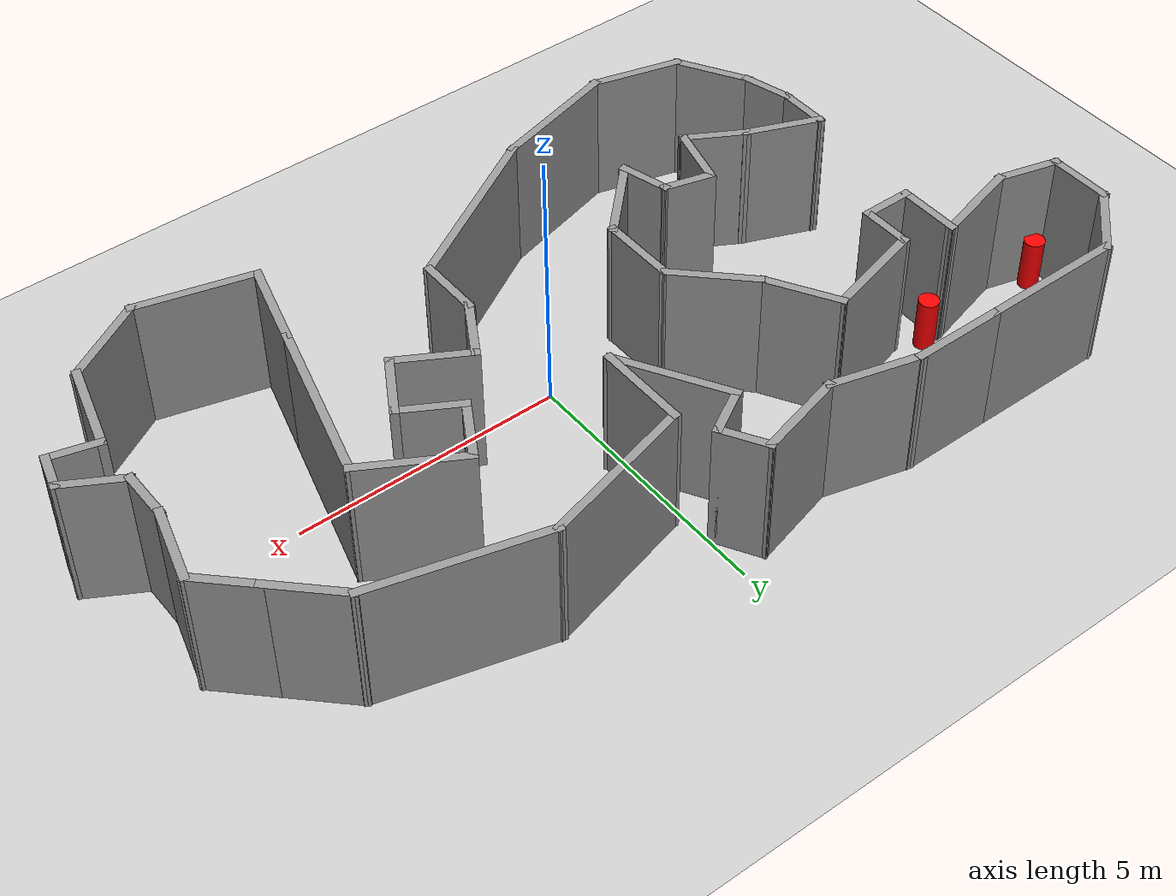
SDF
<sdf version="1.6">
 <world name="default">
  <light name="sun" type="directional">
   <pose>0 0 10 0 -0 0</pose>
   <diffuse>0.8 0.8 0.8 1</diffuse>
   <specular>0.2 0.2 0.2 1</specular>
   <attenuation>
    <range>1000</range>
    <constant>0.9</constant>
    <linear>0.01</linear>
    <quadratic>0.001</quadratic>
   </attenuation>
   <direction>-0.5 0.1 -0.9</direction>
  </light>
  <model name="ground_plane">
   <static>1</static>
   <link name="link">
    <collision name="collision">
     <geometry><plane><normal>0 0 1</normal><size>100 100</size></plane></geometry>
     <surface>
      <contact><collide_bitmask>65535</collide_bitmask></contact>
      <friction><ode><mu>100</mu><mu2>50</mu2></ode></friction>
     </surface>
    </collision>
    <visual name="visual">
     <cast_shadows>0</cast_shadows>
     <geometry><plane><normal>0 0 1</normal><size>100 100</size></plane></geometry>
     <material>
      <script><uri>file://media/materials/scripts/gazebo.material</uri><name>Gazebo/Grey</name></script>
     </material>
    </visual>
   </link>
  </model>
  <gravity>0 0 -9.8</gravity>
  <magnetic_field>6e-06 2.3e-05 -4.2e-05</magnetic_field>
  <atmosphere type="adiabatic"/>
  <physics name="default_physics" default="0" type="ode">
   <max_step_size>0.001</max_step_size>
   <real_time_factor>1</real_time_factor>
   <real_time_update_rate>1000</real_time_update_rate>
  </physics>
  <scene><ambient>0.4 0.4 0.4 1</ambient><background>0.7 0.7 0.7 1</background><shadows>0</shadows></scene>
  <audio><device>default</device></audio>
  <spherical_coordinates>
   <surface_model>EARTH_WGS84</surface_model>
   <latitude_deg>0</latitude_deg>
   <longitude_deg>0</longitude_deg>
   <elevation>0</elevation>
   <heading_deg>0</heading_deg>
  </spherical_coordinates>
  <model name="uwb_anchor0">
   <link name="link">
    <inertial>
     <mass>1</mass>
     <inertia><ixx>0.145833</ixx><ixy>0</ixy><ixz>0</ixz><iyy>0.145833</iyy><iyz>0</iyz><izz>0.125</izz></inertia>
    </inertial>
    <visual name="visual">
     <geometry><cylinder><radius>0.18609</radius><length>1</length></cylinder></geometry>
     <material>
      <script><name>Gazebo/Grey</name><uri>file://media/materials/scripts/gazebo.material</uri></script>
      <ambient>0 0 0 1</ambient>
      <shader type="vertex"><normal_map>__default__</normal_map></shader>
      <diffuse>1 0 0 1</diffuse>
      <specular>0.01 0.01 0.01 1</specular>
      <emissive>0 0 0 1</emissive>
     </material>
    </visual>
    <collision name="collision">
     <geometry><cylinder><radius>0.18609</radius><length>1</length></cylinder></geometry>
     <surface>
      <friction>
       <ode><mu>1</mu><mu2>1</mu2><fdir1>0 0 0</fdir1><slip1>0</slip1><slip2>0</slip2></ode>
       <torsional>
        <coefficient>1</coefficient>
        <patch_radius>0</patch_radius>
        <surface_radius>0</surface_radius>
        <use_patch_radius>1</use_patch_radius>
        <ode><slip>0</slip></ode>
       </torsional>
      </friction>
      <bounce><restitution_coefficient>0</restitution_coefficient><threshold>1e+06</threshold></bounce>
      <contact>
       <collide_without_contact>0</collide_without_contact>
       <collide_without_contact_bitmask>1</collide_without_contact_bitmask>
       <collide_bitmask>1</collide_bitmask>
       <ode>
        <soft_cfm>0</soft_cfm>
        <soft_erp>0.2</soft_erp>
        <kp>1e+13</kp>
        <kd>1</kd>
        <max_vel>0.01</max_vel>
        <min_depth>0</min_depth>
       </ode>
       <bullet>
        <split_impulse>1</split_impulse>
        <split_impulse_penetration_threshold>-0.01</split_impulse_penetration_threshold>
        <soft_cfm>0</soft_cfm>
        <soft_erp>0.2</soft_erp>
        <kp>1e+13</kp>
        <kd>1</kd>
       </bullet>
      </contact>
     </surface>
    </collision>
   </link>
   <static>1</static>
   <pose>-1.10123 4.11085 0.5 0 -0 0</pose>
  </model>
  <model name="Untitled">
   <pose>-0.232609 0.530224 0 0 -0 0</pose>
   <link name="Wall_0">
    <collision name="Wall_0_Collision">
     <geometry><box><size>1 0.15 2.5</size></box></geometry>
     <pose>0 0 1.25 0 -0 0</pose>
    </collision>
    <visual name="Wall_0_Visual">
     <pose>0 0 1.25 0 -0 0</pose>
     <geometry><box><size>1 0.15 2.5</size></box></geometry>
     <material>
      <script><uri>file://media/materials/scripts/gazebo.material</uri><name>Gazebo/Grey</name></script>
      <ambient>1 1 1 1</ambient>
     </material>
     <meta><layer>0</layer></meta>
    </visual>
    <pose>-6.13284 -1.52466 0 0 -0 -1.5708</pose>
   </link>
   <link name="Wall_1">
    <collision name="Wall_1_Collision">
     <geometry><box><size>1 0.15 2.5</size></box></geometry>
     <pose>0 0 1.25 0 -0 0</pose>
    </collision>
    <visual name="Wall_1_Visual">
     <pose>0 0 1.25 0 -0 0</pose>
     <geometry><box><size>1 0.15 2.5</size></box></geometry>
     <material>
      <script><uri>file://media/materials/scripts/gazebo.material</uri><name>Gazebo/Grey</name></script>
      <ambient>1 1 1 1</ambient>
     </material>
     <meta><layer>0</layer></meta>
    </visual>
    <pose>-6.02285 -2.36018 0 0 -0 -1.309</pose>
   </link>
   <link name="Wall_10">
    <collision name="Wall_10_Collision">
     <geometry><box><size>1.5 0.15 2.5</size></box></geometry>
     <pose>0 0 1.25 0 -0 0</pose>
    </collision>
    <visual name="Wall_10_Visual">
     <pose>0 0 1.25 0 -0 0</pose>
     <geometry><box><size>1.5 0.15 2.5</size></box></geometry>
     <material>
      <script><uri>file://media/materials/scripts/gazebo.material</uri><name>Gazebo/Grey</name></script>
      <ambient>1 1 1 1</ambient>
     </material>
     <meta><layer>0</layer></meta>
    </visual>
    <pose>2.61331 -0.355587 0 0 -0 -0.523599</pose>
   </link>
   <link name="Wall_11">
    <collision name="Wall_11_Collision">
     <geometry><box><size>1.25 0.15 2.5</size></box></geometry>
     <pose>0 0 1.25 0 -0 0</pose>
    </collision>
    <visual name="Wall_11_Visual">
     <pose>0 0 1.25 0 -0 0</pose>
     <geometry><box><size>1.25 0.15 2.5</size></box></geometry>
     <material>
      <script><uri>file://media/materials/scripts/gazebo.material</uri><name>Gazebo/Grey</name></script>
      <ambient>1 1 1 1</ambient>
     </material>
     <meta><layer>0</layer></meta>
    </visual>
    <pose>3.47288 -0.216773 0 0 -0 1.0472</pose>
   </link>
   <link name="Wall_12">
    <collision name="Wall_12_Collision">
     <geometry><box><size>1.25 0.15 2.5</size></box></geometry>
     <pose>0 0 1.25 0 -0 0</pose>
    </collision>
    <visual name="Wall_12_Visual">
     <pose>0 0 1.25 0 -0 0</pose>
     <geometry><box><size>1.25 0.15 2.5</size></box></geometry>
     <material>
      <script><uri>file://media/materials/scripts/gazebo.material</uri><name>Gazebo/Grey</name></script>
      <ambient>1 1 1 1</ambient>
     </material>
     <meta><layer>0</layer></meta>
    </visual>
    <pose>3.27156 0.534541 0 0 -0 2.61799</pose>
   </link>
   <link name="Wall_13">
    <collision name="Wall_13_Collision">
     <geometry><box><size>1.25 0.15 2.5</size></box></geometry>
     <pose>0 0 1.25 0 -0 0</pose>
    </collision>
    <visual name="Wall_13_Visual">
     <pose>0 0 1.25 0 -0 0</pose>
     <geometry><box><size>1.25 0.15 2.5</size></box></geometry>
     <material>
      <script><uri>file://media/materials/scripts/gazebo.material</uri><name>Gazebo/Grey</name></script>
      <ambient>1 1 1 1</ambient>
     </material>
     <meta><layer>0</layer></meta>
    </visual>
    <pose>3.07025 1.28585 0 0 -0 1.0472</pose>
   </link>
   <link name="Wall_14">
    <collision name="Wall_14_Collision">
     <geometry><box><size>2 0.15 2.5</size></box></geometry>
     <pose>0 0 1.25 0 -0 0</pose>
    </collision>
    <visual name="Wall_14_Visual">
     <pose>0 0 1.25 0 -0 0</pose>
     <geometry><box><size>2 0.15 2.5</size></box></geometry>
     <material>
      <script><uri>file://media/materials/scripts/gazebo.material</uri><name>Gazebo/Grey</name></script>
      <ambient>1 1 1 1</ambient>
     </material>
     <meta><layer>0</layer></meta>
    </visual>
    <pose>4.14632 1.29967 0 0 -0 -0.523599</pose>
   </link>
   <link name="Wall_15">
    <collision name="Wall_15_Collision">
     <geometry><box><size>3.25 0.15 2.5</size></box></geometry>
     <pose>0 0 1.25 0 -0 0</pose>
    </collision>
    <visual name="Wall_15_Visual">
     <pose>0 0 1.25 0 -0 0</pose>
     <geometry><box><size>3.25 0.15 2.5</size></box></geometry>
     <material>
      <script><uri>file://media/materials/scripts/gazebo.material</uri><name>Gazebo/Grey</name></script>
      <ambient>1 1 1 1</ambient>
     </material>
     <meta><layer>0</layer></meta>
    </visual>
    <pose>4.54623 -0.660016 0 0 -0 -1.8326</pose>
   </link>
   <link name="Wall_16">
    <collision name="Wall_16_Collision">
     <geometry><box><size>1.75 0.15 2.5</size></box></geometry>
     <pose>0 0 1.25 0 -0 0</pose>
    </collision>
    <visual name="Wall_16_Visual">
     <pose>0 0 1.25 0 -0 0</pose>
     <geometry><box><size>1.75 0.15 2.5</size></box></geometry>
     <material>
      <script><uri>file://media/materials/scripts/gazebo.material</uri><name>Gazebo/Grey</name></script>
      <ambient>1 1 1 1</ambient>
     </material>
     <meta><layer>0</layer></meta>
    </visual>
    <pose>3.938 -2.92994 0 0 -0 -1.8326</pose>
   </link>
   <link name="Wall_17">
    <collision name="Wall_17_Collision">
     <geometry><box><size>2.25 0.15 2.5</size></box></geometry>
     <pose>0 0 1.25 0 -0 0</pose>
    </collision>
    <visual name="Wall_17_Visual">
     <pose>0 0 1.25 0 -0 0</pose>
     <geometry><box><size>2.25 0.15 2.5</size></box></geometry>
     <material>
      <script><uri>file://media/materials/scripts/gazebo.material</uri><name>Gazebo/Grey</name></script>
      <ambient>1 1 1 1</ambient>
     </material>
     <meta><layer>0</layer></meta>
    </visual>
    <pose>4.74517 -3.97444 0 0 -0 -0.261799</pose>
   </link>
   <link name="Wall_18">
    <collision name="Wall_18_Collision">
     <geometry><box><size>1.75 0.15 2.5</size></box></geometry>
     <pose>0 0 1.25 0 -0 0</pose>
    </collision>
    <visual name="Wall_18_Visual">
     <pose>0 0 1.25 0 -0 0</pose>
     <geometry><box><size>1.75 0.15 2.5</size></box></geometry>
     <material>
      <script><uri>file://media/materials/scripts/gazebo.material</uri><name>Gazebo/Grey</name></script>
      <ambient>1 1 1 1</ambient>
     </material>
     <meta><layer>0</layer></meta>
    </visual>
    <pose>6.45221 -3.8462 0 0 -0 0.523599</pose>
   </link>
   <link name="Wall_19">
    <collision name="Wall_19_Collision">
     <geometry><box><size>1.75 0.15 2.5</size></box></geometry>
     <pose>0 0 1.25 0 -0 0</pose>
    </collision>
    <visual name="Wall_19_Visual">
     <pose>0 0 1.25 0 -0 0</pose>
     <geometry><box><size>1.75 0.15 2.5</size></box></geometry>
     <material>
      <script><uri>file://media/materials/scripts/gazebo.material</uri><name>Gazebo/Grey</name></script>
      <ambient>1 1 1 1</ambient>
     </material>
     <meta><layer>0</layer></meta>
    </visual>
    <pose>7.35209 -2.67346 0 0 -0 1.309</pose>
   </link>
   <link name="Wall_20">
    <collision name="Wall_20_Collision">
     <geometry><box><size>1 0.15 2.5</size></box></geometry>
     <pose>0 0 1.25 0 -0 0</pose>
    </collision>
    <visual name="Wall_20_Visual">
     <pose>0 0 1.25 0 -0 0</pose>
     <geometry><box><size>1 0.15 2.5</size></box></geometry>
     <material>
      <script><uri>file://media/materials/scripts/gazebo.material</uri><name>Gazebo/Grey</name></script>
      <ambient>1 1 1 1</ambient>
     </material>
     <meta><layer>0</layer></meta>
    </visual>
    <pose>7.96966 -2.01072 0 0 -0 -0.261799</pose>
   </link>
   <link name="Wall_21">
    <collision name="Wall_21_Collision">
     <geometry><box><size>0.75 0.15 2.5</size></box></geometry>
     <pose>0 0 1.25 0 -0 0</pose>
    </collision>
    <visual name="Wall_21_Visual">
     <pose>0 0 1.25 0 -0 0</pose>
     <geometry><box><size>0.75 0.15 2.5</size></box></geometry>
     <material>
      <script><uri>file://media/materials/scripts/gazebo.material</uri><name>Gazebo/Grey</name></script>
      <ambient>1 1 1 1</ambient>
     </material>
     <meta><layer>0</layer></meta>
    </visual>
    <pose>8.45782 -1.83094 0 0 -0 1.309</pose>
   </link>
   <link name="Wall_22">
    <collision name="Wall_22_Collision">
     <geometry><box><size>1.25 0.15 2.5</size></box></geometry>
     <pose>0 0 1.25 0 -0 0</pose>
    </collision>
    <visual name="Wall_22_Visual">
     <pose>0 0 1.25 0 -0 0</pose>
     <geometry><box><size>1.25 0.15 2.5</size></box></geometry>
     <material>
      <script><uri>file://media/materials/scripts/gazebo.material</uri><name>Gazebo/Grey</name></script>
      <ambient>1 1 1 1</ambient>
     </material>
     <meta><layer>0</layer></meta>
    </visual>
    <pose>8.05916 -1.26616 0 0 -0 2.61799</pose>
   </link>
   <link name="Wall_23">
    <collision name="Wall_23_Collision">
     <geometry><box><size>1 0.15 2.5</size></box></geometry>
     <pose>0 0 1.25 0 -0 0</pose>
    </collision>
    <visual name="Wall_23_Visual">
     <pose>0 0 1.25 0 -0 0</pose>
     <geometry><box><size>1 0.15 2.5</size></box></geometry>
     <material>
      <script><uri>file://media/materials/scripts/gazebo.material</uri><name>Gazebo/Grey</name></script>
      <ambient>1 1 1 1</ambient>
     </material>
     <meta><layer>0</layer></meta>
    </visual>
    <pose>7.58284 -0.566162 0 0 -0 1.5708</pose>
   </link>
   <link name="Wall_24">
    <collision name="Wall_24_Collision">
     <geometry><box><size>1.5 0.15 2.5</size></box></geometry>
     <pose>0 0 1.25 0 -0 0</pose>
    </collision>
    <visual name="Wall_24_Visual">
     <pose>0 0 1.25 0 -0 0</pose>
     <geometry><box><size>1.5 0.15 2.5</size></box></geometry>
     <material>
      <script><uri>file://media/materials/scripts/gazebo.material</uri><name>Gazebo/Grey</name></script>
      <ambient>1 1 1 1</ambient>
     </material>
     <meta><layer>0</layer></meta>
    </visual>
    <pose>7.75755 0.510838 0 0 -0 1.309</pose>
   </link>
   <link name="Wall_25">
    <collision name="Wall_25_Collision">
     <geometry><box><size>1.25 0.15 2.5</size></box></geometry>
     <pose>0 0 1.25 0 -0 0</pose>
    </collision>
    <visual name="Wall_25_Visual">
     <pose>0 0 1.25 0 -0 0</pose>
     <geometry><box><size>1.25 0.15 2.5</size></box></geometry>
     <material>
      <script><uri>file://media/materials/scripts/gazebo.material</uri><name>Gazebo/Grey</name></script>
      <ambient>1 1 1 1</ambient>
     </material>
     <meta><layer>0</layer></meta>
    </visual>
    <pose>7.54334 1.55175 0 0 -0 2.35619</pose>
   </link>
   <link name="Wall_26">
    <collision name="Wall_26_Collision">
     <geometry><box><size>1.5 0.15 2.5</size></box></geometry>
     <pose>0 0 1.25 0 -0 0</pose>
    </collision>
    <visual name="Wall_26_Visual">
     <pose>0 0 1.25 0 -0 0</pose>
     <geometry><box><size>1.5 0.15 2.5</size></box></geometry>
     <material>
      <script><uri>file://media/materials/scripts/gazebo.material</uri><name>Gazebo/Grey</name></script>
      <ambient>1 1 1 1</ambient>
     </material>
     <meta><layer>0</layer></meta>
    </visual>
    <pose>6.67713 2.41795 0 0 -0 2.35619</pose>
   </link>
   <link name="Wall_27">
    <collision name="Wall_27_Collision">
     <geometry><box><size>3.25 0.15 2.5</size></box></geometry>
     <pose>0 0 1.25 0 -0 0</pose>
    </collision>
    <visual name="Wall_27_Visual">
     <pose>0 0 1.25 0 -0 0</pose>
     <geometry><box><size>3.25 0.15 2.5</size></box></geometry>
     <material>
      <script><uri>file://media/materials/scripts/gazebo.material</uri><name>Gazebo/Grey</name></script>
      <ambient>1 1 1 1</ambient>
     </material>
     <meta><layer>0</layer></meta>
    </visual>
    <pose>4.70265 3.29642 0 0 -0 2.87979</pose>
   </link>
   <link name="Wall_28">
    <collision name="Wall_28_Collision">
     <geometry><box><size>3 0.15 2.5</size></box></geometry>
     <pose>0 0 1.25 0 -0 0</pose>
    </collision>
    <visual name="Wall_28_Visual">
     <pose>0 0 1.25 0 -0 0</pose>
     <geometry><box><size>3 0.15 2.5</size></box></geometry>
     <material>
      <script><uri>file://media/materials/scripts/gazebo.material</uri><name>Gazebo/Grey</name></script>
      <ambient>1 1 1 1</ambient>
     </material>
     <meta><layer>0</layer></meta>
    </visual>
    <pose>1.82902 3.32877 0 0 -0 -2.87979</pose>
   </link>
   <link name="Wall_29">
    <collision name="Wall_29_Collision">
     <geometry><box><size>1.75 0.15 2.5</size></box></geometry>
     <pose>0 0 1.25 0 -0 0</pose>
    </collision>
    <visual name="Wall_29_Visual">
     <pose>0 0 1.25 0 -0 0</pose>
     <geometry><box><size>1.75 0.15 2.5</size></box></geometry>
     <material>
      <script><uri>file://media/materials/scripts/gazebo.material</uri><name>Gazebo/Grey</name></script>
      <ambient>1 1 1 1</ambient>
     </material>
     <meta><layer>0</layer></meta>
    </visual>
    <pose>0.452579 2.15996 0 0 -0 -1.5708</pose>
   </link>
   <link name="Wall_30">
    <collision name="Wall_30_Collision">
     <geometry><box><size>2.25 0.15 2.5</size></box></geometry>
     <pose>0 0 1.25 0 -0 0</pose>
    </collision>
    <visual name="Wall_30_Visual">
     <pose>0 0 1.25 0 -0 0</pose>
     <geometry><box><size>2.25 0.15 2.5</size></box></geometry>
     <material>
      <script><uri>file://media/materials/scripts/gazebo.material</uri><name>Gazebo/Grey</name></script>
      <ambient>1 1 1 1</ambient>
     </material>
     <meta><layer>0</layer></meta>
    </visual>
    <pose>-0.072421 2.26928 0 0 -0 2.0944</pose>
   </link>
   <link name="Wall_31">
    <collision name="Wall_31_Collision">
     <geometry><box><size>1 0.15 2.5</size></box></geometry>
     <pose>0 0 1.25 0 -0 0</pose>
    </collision>
    <visual name="Wall_31_Visual">
     <pose>0 0 1.25 0 -0 0</pose>
     <geometry><box><size>1 0.15 2.5</size></box></geometry>
     <material>
      <script><uri>file://media/materials/scripts/gazebo.material</uri><name>Gazebo/Grey</name></script>
      <ambient>1 1 1 1</ambient>
     </material>
     <meta><layer>0</layer></meta>
    </visual>
    <pose>-0.22936 3.39111 0 0 -0 0.523599</pose>
   </link>
   <link name="Wall_32">
    <collision name="Wall_32_Collision">
     <geometry><box><size>1 0.15 2.5</size></box></geometry>
     <pose>0 0 1.25 0 -0 0</pose>
    </collision>
    <visual name="Wall_32_Visual">
     <pose>0 0 1.25 0 -0 0</pose>
     <geometry><box><size>1 0.15 2.5</size></box></geometry>
     <material>
      <script><uri>file://media/materials/scripts/gazebo.material</uri><name>Gazebo/Grey</name></script>
      <ambient>1 1 1 1</ambient>
     </material>
     <meta><layer>0</layer></meta>
    </visual>
    <pose>-0.0738 3.97167 0 0 -0 2.0944</pose>
   </link>
   <link name="Wall_33">
    <collision name="Wall_33_Collision">
     <geometry><box><size>1.75 0.15 2.5</size></box></geometry>
     <pose>0 0 1.25 0 -0 0</pose>
    </collision>
    <visual name="Wall_33_Visual">
     <pose>0 0 1.25 0 -0 0</pose>
     <geometry><box><size>1.75 0.15 2.5</size></box></geometry>
     <material>
      <script><uri>file://media/materials/scripts/gazebo.material</uri><name>Gazebo/Grey</name></script>
      <ambient>1 1 1 1</ambient>
     </material>
     <meta><layer>0</layer></meta>
    </visual>
    <pose>-1.05904 4.13267 0 0 -0 -2.87979</pose>
   </link>
   <link name="Wall_34">
    <collision name="Wall_34_Collision">
     <geometry><box><size>1.75 0.15 2.5</size></box></geometry>
     <pose>0 0 1.25 0 -0 0</pose>
    </collision>
    <visual name="Wall_34_Visual">
     <pose>0 0 1.25 0 -0 0</pose>
     <geometry><box><size>1.75 0.15 2.5</size></box></geometry>
     <material>
      <script><uri>file://media/materials/scripts/gazebo.material</uri><name>Gazebo/Grey</name></script>
      <ambient>1 1 1 1</ambient>
     </material>
     <meta><layer>0</layer></meta>
    </visual>
    <pose>-2.60452 4.13267 0 0 -0 2.87979</pose>
   </link>
   <link name="Wall_35">
    <collision name="Wall_35_Collision">
     <geometry><box><size>1.75 0.15 2.5</size></box></geometry>
     <pose>0 0 1.25 0 -0 0</pose>
    </collision>
    <visual name="Wall_35_Visual">
     <pose>0 0 1.25 0 -0 0</pose>
     <geometry><box><size>1.75 0.15 2.5</size></box></geometry>
     <material>
      <script><uri>file://media/materials/scripts/gazebo.material</uri><name>Gazebo/Grey</name></script>
      <ambient>1 1 1 1</ambient>
     </material>
     <meta><layer>0</layer></meta>
    </visual>
    <pose>-4.17726 4.33973 0 0 -0 3.14159</pose>
   </link>
   <link name="Wall_36">
    <collision name="Wall_36_Collision">
     <geometry><box><size>2.75 0.15 2.5</size></box></geometry>
     <pose>0 0 1.25 0 -0 0</pose>
    </collision>
    <visual name="Wall_36_Visual">
     <pose>0 0 1.25 0 -0 0</pose>
     <geometry><box><size>2.75 0.15 2.5</size></box></geometry>
     <material>
      <script><uri>file://media/materials/scripts/gazebo.material</uri><name>Gazebo/Grey</name></script>
      <ambient>1 1 1 1</ambient>
     </material>
     <meta><layer>0</layer></meta>
    </visual>
    <pose>-6.27726 4.33973 0 0 -0 3.14159</pose>
   </link>
   <link name="Wall_37">
    <collision name="Wall_37_Collision">
     <geometry><box><size>1.5 0.15 2.5</size></box></geometry>
     <pose>0 0 1.25 0 -0 0</pose>
    </collision>
    <visual name="Wall_37_Visual">
     <pose>0 0 1.25 0 -0 0</pose>
     <geometry><box><size>1.5 0.15 2.5</size></box></geometry>
     <material>
      <script><uri>file://media/materials/scripts/gazebo.material</uri><name>Gazebo/Grey</name></script>
      <ambient>1 1 1 1</ambient>
     </material>
     <meta><layer>0</layer></meta>
    </visual>
    <pose>-8.05456 3.86243 0 0 -0 -2.35619</pose>
   </link>
   <link name="Wall_38">
    <collision name="Wall_38_Collision">
     <geometry><box><size>1.25 0.15 2.5</size></box></geometry>
     <pose>0 0 1.25 0 -0 0</pose>
    </collision>
    <visual name="Wall_38_Visual">
     <pose>0 0 1.25 0 -0 0</pose>
     <geometry><box><size>1.25 0.15 2.5</size></box></geometry>
     <material>
      <script><uri>file://media/materials/scripts/gazebo.material</uri><name>Gazebo/Grey</name></script>
      <ambient>1 1 1 1</ambient>
     </material>
     <meta><layer>0</layer></meta>
    </visual>
    <pose>-8.53186 2.83514 0 0 -0 -1.5708</pose>
   </link>
   <link name="Wall_39">
    <collision name="Wall_39_Collision">
     <geometry><box><size>1.25 0.15 2.5</size></box></geometry>
     <pose>0 0 1.25 0 -0 0</pose>
    </collision>
    <visual name="Wall_39_Visual">
     <pose>0 0 1.25 0 -0 0</pose>
     <geometry><box><size>1.25 0.15 2.5</size></box></geometry>
     <material>
      <script><uri>file://media/materials/scripts/gazebo.material</uri><name>Gazebo/Grey</name></script>
      <ambient>1 1 1 1</ambient>
     </material>
     <meta><layer>0</layer></meta>
    </visual>
    <pose>-8.0006 2.14278 0 0 -0 -0.261799</pose>
   </link>
   <link name="Wall_4">
    <collision name="Wall_4_Collision">
     <geometry><box><size>1.5 0.15 2.5</size></box></geometry>
     <pose>0 0 1.25 0 -0 0</pose>
    </collision>
    <visual name="Wall_4_Visual">
     <pose>0 0 1.25 0 -0 0</pose>
     <geometry><box><size>1.5 0.15 2.5</size></box></geometry>
     <material>
      <script><uri>file://media/materials/scripts/gazebo.material</uri><name>Gazebo/Grey</name></script>
      <ambient>1 1 1 1</ambient>
     </material>
     <meta><layer>0</layer></meta>
    </visual>
    <pose>-5.57535 -3.35526 0 0 -0 -1.0472</pose>
   </link>
   <link name="Wall_40">
    <collision name="Wall_40_Collision">
     <geometry><box><size>1.75 0.15 2.5</size></box></geometry>
     <pose>0 0 1.25 0 -0 0</pose>
    </collision>
    <visual name="Wall_40_Visual">
     <pose>0 0 1.25 0 -0 0</pose>
     <geometry><box><size>1.75 0.15 2.5</size></box></geometry>
     <material>
      <script><uri>file://media/materials/scripts/gazebo.material</uri><name>Gazebo/Grey</name></script>
      <ambient>1 1 1 1</ambient>
     </material>
     <meta><layer>0</layer></meta>
    </visual>
    <pose>-6.6966 2.20749 0 0 -0 0.261799</pose>
   </link>
   <link name="Wall_41">
    <collision name="Wall_41_Collision">
     <geometry><box><size>1.25 0.15 2.5</size></box></geometry>
     <pose>0 0 1.25 0 -0 0</pose>
    </collision>
    <visual name="Wall_41_Visual">
     <pose>0 0 1.25 0 -0 0</pose>
     <geometry><box><size>1.25 0.15 2.5</size></box></geometry>
     <material>
      <script><uri>file://media/materials/scripts/gazebo.material</uri><name>Gazebo/Grey</name></script>
      <ambient>1 1 1 1</ambient>
     </material>
     <meta><layer>0</layer></meta>
    </visual>
    <pose>-5.92386 1.86454 0 0 -0 -1.5708</pose>
   </link>
   <link name="Wall_42">
    <collision name="Wall_42_Collision">
     <geometry><box><size>1 0.15 2.5</size></box></geometry>
     <pose>0 0 1.25 0 -0 0</pose>
    </collision>
    <visual name="Wall_42_Visual">
     <pose>0 0 1.25 0 -0 0</pose>
     <geometry><box><size>1 0.15 2.5</size></box></geometry>
     <material>
      <script><uri>file://media/materials/scripts/gazebo.material</uri><name>Gazebo/Grey</name></script>
      <ambient>1 1 1 1</ambient>
     </material>
     <meta><layer>0</layer></meta>
    </visual>
    <pose>-5.49886 1.31455 0 0 -0 0</pose>
   </link>
   <link name="Wall_43">
    <collision name="Wall_43_Collision">
     <geometry><box><size>1 0.15 2.5</size></box></geometry>
     <pose>0 0 1.25 0 -0 0</pose>
    </collision>
    <visual name="Wall_43_Visual">
     <pose>0 0 1.25 0 -0 0</pose>
     <geometry><box><size>1 0.15 2.5</size></box></geometry>
     <material>
      <script><uri>file://media/materials/scripts/gazebo.material</uri><name>Gazebo/Grey</name></script>
      <ambient>1 1 1 1</ambient>
     </material>
     <meta><layer>0</layer></meta>
    </visual>
    <pose>-5.07386 1.73954 0 0 -0 1.5708</pose>
   </link>
   <link name="Wall_44">
    <collision name="Wall_44_Collision">
     <geometry><box><size>2 0.15 2.5</size></box></geometry>
     <pose>0 0 1.25 0 -0 0</pose>
    </collision>
    <visual name="Wall_44_Visual">
     <pose>0 0 1.25 0 -0 0</pose>
     <geometry><box><size>2 0.15 2.5</size></box></geometry>
     <material>
      <script><uri>file://media/materials/scripts/gazebo.material</uri><name>Gazebo/Grey</name></script>
      <ambient>1 1 1 1</ambient>
     </material>
     <meta><layer>0</layer></meta>
    </visual>
    <pose>-4.18037 2.40395 0 0 -0 0.261799</pose>
   </link>
   <link name="Wall_45">
    <collision name="Wall_45_Collision">
     <geometry><box><size>1.5 0.15 2.5</size></box></geometry>
     <pose>0 0 1.25 0 -0 0</pose>
    </collision>
    <visual name="Wall_45_Visual">
     <pose>0 0 1.25 0 -0 0</pose>
     <geometry><box><size>1.5 0.15 2.5</size></box></geometry>
     <material>
      <script><uri>file://media/materials/scripts/gazebo.material</uri><name>Gazebo/Grey</name></script>
      <ambient>1 1 1 1</ambient>
     </material>
     <meta><layer>0</layer></meta>
    </visual>
    <pose>-2.94939 2.05879 0 0 -0 -1.0472</pose>
   </link>
   <link name="Wall_46">
    <collision name="Wall_46_Collision">
     <geometry><box><size>1.75 0.15 2.5</size></box></geometry>
     <pose>0 0 1.25 0 -0 0</pose>
    </collision>
    <visual name="Wall_46_Visual">
     <pose>0 0 1.25 0 -0 0</pose>
     <geometry><box><size>1.75 0.15 2.5</size></box></geometry>
     <material>
      <script><uri>file://media/materials/scripts/gazebo.material</uri><name>Gazebo/Grey</name></script>
      <ambient>1 1 1 1</ambient>
     </material>
     <meta><layer>0</layer></meta>
    </visual>
    <pose>-2.04621 0.90854 0 0 -0 -0.785398</pose>
   </link>
   <link name="Wall_47">
    <collision name="Wall_47_Collision">
     <geometry><box><size>1.5 0.15 2.5</size></box></geometry>
     <pose>0 0 1.25 0 -0 0</pose>
    </collision>
    <visual name="Wall_47_Visual">
     <pose>0 0 1.25 0 -0 0</pose>
     <geometry><box><size>1.5 0.15 2.5</size></box></geometry>
     <material>
      <script><uri>file://media/materials/scripts/gazebo.material</uri><name>Gazebo/Grey</name></script>
      <ambient>1 1 1 1</ambient>
     </material>
     <meta><layer>0</layer></meta>
    </visual>
    <pose>-1.48052 -0.332145 0 0 -0 -1.5708</pose>
   </link>
   <link name="Wall_48">
    <collision name="Wall_48_Collision">
     <geometry><box><size>1.75 0.15 2.5</size></box></geometry>
     <pose>0 0 1.25 0 -0 0</pose>
    </collision>
    <visual name="Wall_48_Visual">
     <pose>0 0 1.25 0 -0 0</pose>
     <geometry><box><size>1.75 0.15 2.5</size></box></geometry>
     <material>
      <script><uri>file://media/materials/scripts/gazebo.material</uri><name>Gazebo/Grey</name></script>
      <ambient>1 1 1 1</ambient>
     </material>
     <meta><layer>0</layer></meta>
    </visual>
    <pose>-2.04621 -1.57283 0 0 -0 -2.35619</pose>
   </link>
   <link name="Wall_49">
    <collision name="Wall_49_Collision">
     <geometry><box><size>1 0.15 2.5</size></box></geometry>
     <pose>0 0 1.25 0 -0 0</pose>
    </collision>
    <visual name="Wall_49_Visual">
     <pose>0 0 1.25 0 -0 0</pose>
     <geometry><box><size>1 0.15 2.5</size></box></geometry>
     <material>
      <script><uri>file://media/materials/scripts/gazebo.material</uri><name>Gazebo/Grey</name></script>
      <ambient>1 1 1 1</ambient>
     </material>
     <meta><layer>0</layer></meta>
    </visual>
    <pose>-2.72189 -1.728 0 0 -0 1.8326</pose>
   </link>
   <link name="Wall_5">
    <collision name="Wall_5_Collision">
     <geometry><box><size>1.75 0.15 2.5</size></box></geometry>
     <pose>0 0 1.25 0 -0 0</pose>
    </collision>
    <visual name="Wall_5_Visual">
     <pose>0 0 1.25 0 -0 0</pose>
     <geometry><box><size>1.75 0.15 2.5</size></box></geometry>
     <material>
      <script><uri>file://media/materials/scripts/gazebo.material</uri><name>Gazebo/Grey</name></script>
      <ambient>1 1 1 1</ambient>
     </material>
     <meta><layer>0</layer></meta>
    </visual>
    <pose>-4.46511 -4.14688 0 0 -0 -0.261799</pose>
   </link>
   <link name="Wall_50">
    <collision name="Wall_50_Collision">
     <geometry><box><size>1 0.15 2.5</size></box></geometry>
     <pose>0 0 1.25 0 -0 0</pose>
    </collision>
    <visual name="Wall_50_Visual">
     <pose>0 0 1.25 0 -0 0</pose>
     <geometry><box><size>1 0.15 2.5</size></box></geometry>
     <material>
      <script><uri>file://media/materials/scripts/gazebo.material</uri><name>Gazebo/Grey</name></script>
      <ambient>1 1 1 1</ambient>
     </material>
     <meta><layer>0</layer></meta>
    </visual>
    <pose>-3.24241 -1.20748 0 0 -0 2.87979</pose>
   </link>
   <link name="Wall_51">
    <collision name="Wall_51_Collision">
     <geometry><box><size>1.25 0.15 2.5</size></box></geometry>
     <pose>0 0 1.25 0 -0 0</pose>
    </collision>
    <visual name="Wall_51_Visual">
     <pose>0 0 1.25 0 -0 0</pose>
     <geometry><box><size>1.25 0.15 2.5</size></box></geometry>
     <material>
      <script><uri>file://media/materials/scripts/gazebo.material</uri><name>Gazebo/Grey</name></script>
      <ambient>1 1 1 1</ambient>
     </material>
     <meta><layer>0</layer></meta>
    </visual>
    <pose>-3.79528 -1.62874 0 0 -0 -1.8326</pose>
   </link>
   <link name="Wall_52">
    <collision name="Wall_52_Collision">
     <geometry><box><size>1.25 0.15 2.5</size></box></geometry>
     <pose>0 0 1.25 0 -0 0</pose>
    </collision>
    <visual name="Wall_52_Visual">
     <pose>0 0 1.25 0 -0 0</pose>
     <geometry><box><size>1.25 0.15 2.5</size></box></geometry>
     <material>
      <script><uri>file://media/materials/scripts/gazebo.material</uri><name>Gazebo/Grey</name></script>
      <ambient>1 1 1 1</ambient>
     </material>
     <meta><layer>0</layer></meta>
    </visual>
    <pose>-4.41394 -1.885 0 0 -0 2.61799</pose>
   </link>
   <link name="Wall_53">
    <collision name="Wall_53_Collision">
     <geometry><box><size>1.49331 0.15 2.5</size></box></geometry>
     <pose>0 0 1.25 0 -0 0</pose>
    </collision>
    <visual name="Wall_53_Visual">
     <pose>0 0 1.25 0 -0 0</pose>
     <geometry><box><size>1.49331 0.15 2.5</size></box></geometry>
     <material>
      <script><uri>file://media/materials/scripts/gazebo.material</uri><name>Gazebo/Grey</name></script>
      <ambient>1 1 1 1</ambient>
     </material>
     <meta><layer>0</layer></meta>
    </visual>
    <pose>-5.51155 -1.35483 0 0 -0 2.75189</pose>
   </link>
   <link name="Wall_6">
    <collision name="Wall_6_Collision">
     <geometry><box><size>2.5 0.15 2.5</size></box></geometry>
     <pose>0 0 1.25 0 -0 0</pose>
    </collision>
    <visual name="Wall_6_Visual">
     <pose>0 0 1.25 0 -0 0</pose>
     <geometry><box><size>2.5 0.15 2.5</size></box></geometry>
     <material>
      <script><uri>file://media/materials/scripts/gazebo.material</uri><name>Gazebo/Grey</name></script>
      <ambient>1 1 1 1</ambient>
     </material>
     <meta><layer>0</layer></meta>
    </visual>
    <pose>-2.5574 -4.04983 0 0 -0 0.261799</pose>
   </link>
   <link name="Wall_7">
    <collision name="Wall_7_Collision">
     <geometry><box><size>3.5 0.15 2.5</size></box></geometry>
     <pose>0 0 1.25 0 -0 0</pose>
    </collision>
    <visual name="Wall_7_Visual">
     <pose>0 0 1.25 0 -0 0</pose>
     <geometry><box><size>3.5 0.15 2.5</size></box></geometry>
     <material>
      <script><uri>file://media/materials/scripts/gazebo.material</uri><name>Gazebo/Grey</name></script>
      <ambient>1 1 1 1</ambient>
     </material>
     <meta><layer>0</layer></meta>
    </visual>
    <pose>0.028151 -2.90822 0 0 -0 0.523599</pose>
   </link>
   <link name="Wall_8">
    <collision name="Wall_8_Collision">
     <geometry><box><size>1.25 0.15 2.5</size></box></geometry>
     <pose>0 0 1.25 0 -0 0</pose>
    </collision>
    <visual name="Wall_8_Visual">
     <pose>0 0 1.25 0 -0 0</pose>
     <geometry><box><size>1.25 0.15 2.5</size></box></geometry>
     <material>
      <script><uri>file://media/materials/scripts/gazebo.material</uri><name>Gazebo/Grey</name></script>
      <ambient>1 1 1 1</ambient>
     </material>
     <meta><layer>0</layer></meta>
    </visual>
    <pose>1.47874 -1.52072 0 0 -0 1.5708</pose>
   </link>
   <link name="Wall_9">
    <collision name="Wall_9_Collision">
     <geometry><box><size>1.25 0.15 2.5</size></box></geometry>
     <pose>0 0 1.25 0 -0 0</pose>
    </collision>
    <visual name="Wall_9_Visual">
     <pose>0 0 1.25 0 -0 0</pose>
     <geometry><box><size>1.25 0.15 2.5</size></box></geometry>
     <material>
      <script><uri>file://media/materials/scripts/gazebo.material</uri><name>Gazebo/Grey</name></script>
      <ambient>1 1 1 1</ambient>
     </material>
     <meta><layer>0</layer></meta>
    </visual>
    <pose>1.75374 -0.494401 0 0 -0 1.0472</pose>
   </link>
   <static>1</static>
  </model>
  <model name="uwb_anchor1">
   <link name="link">
    <inertial>
     <mass>1</mass>
     <inertia><ixx>0.145833</ixx><ixy>0</ixy><ixz>0</ixz><iyy>0.145833</iyy><iyz>0</iyz><izz>0.125</izz></inertia>
    </inertial>
    <visual name="visual">
     <geometry><cylinder><radius>0.18609</radius><length>1</length></cylinder></geometry>
     <material>
      <script><name>Gazebo/Grey</name><uri>file://media/materials/scripts/gazebo.material</uri></script>
      <ambient>0 0 0 1</ambient>
      <shader type="vertex"><normal_map>__default__</normal_map></shader>
      <diffuse>1 0 0 1</diffuse>
      <specular>0.01 0.01 0.01 1</specular>
      <emissive>0 0 0 1</emissive>
     </material>
    </visual>
    <collision name="collision">
     <geometry><cylinder><radius>0.18609</radius><length>1</length></cylinder></geometry>
     <surface>
      <friction>
       <ode><mu>1</mu><mu2>1</mu2><fdir1>0 0 0</fdir1><slip1>0</slip1><slip2>0</slip2></ode>
       <torsional>
        <coefficient>1</coefficient>
        <patch_radius>0</patch_radius>
        <surface_radius>0</surface_radius>
        <use_patch_radius>1</use_patch_radius>
        <ode><slip>0</slip></ode>
       </torsional>
      </friction>
      <bounce><restitution_coefficient>0</restitution_coefficient><threshold>1e+06</threshold></bounce>
      <contact>
       <collide_without_contact>0</collide_without_contact>
       <collide_without_contact_bitmask>1</collide_without_contact_bitmask>
       <collide_bitmask>1</collide_bitmask>
       <ode>
        <soft_cfm>0</soft_cfm>
        <soft_erp>0.2</soft_erp>
        <kp>1e+13</kp>
        <kd>1</kd>
        <max_vel>0.01</max_vel>
        <min_depth>0</min_depth>
       </ode>
       <bullet>
        <split_impulse>1</split_impulse>
        <split_impulse_penetration_threshold>-0.01</split_impulse_penetration_threshold>
        <soft_cfm>0</soft_cfm>
        <soft_erp>0.2</soft_erp>
        <kp>1e+13</kp>
        <kd>1</kd>
       </bullet>
      </contact>
     </surface>
    </collision>
   </link>
   <static>1</static>
   <pose>-5.85696 2.92556 0.5 0 -0 0</pose>
  </model>
  <model name="uwb_anchor2">
   <link name="link">
    <inertial>
     <mass>1</mass>
     <inertia><ixx>0.145833</ixx><ixy>0</ixy><ixz>0</ixz><iyy>0.145833</iyy><iyz>0</iyz><izz>0.125</izz></inertia>
    </inertial>
    <visual name="visual">
     <geometry><cylinder><radius>0.18609</radius><length>1</length></cylinder></geometry>
     <material>
      <script><name>Gazebo/Grey</name><uri>file://media/materials/scripts/gazebo.material</uri></script>
      <ambient>0 0 0 1</ambient>
      <shader type="vertex"><normal_map>__default__</normal_map></shader>
      <diffuse>1 0 0 1</diffuse>
      <specular>0.01 0.01 0.01 1</specular>
      <emissive>0 0 0 1</emissive>
     </material>
    </visual>
    <collision name="collision">
     <geometry><cylinder><radius>0.18609</radius><length>1</length></cylinder></geometry>
     <surface>
      <friction>
       <ode><mu>1</mu><mu2>1</mu2><fdir1>0 0 0</fdir1><slip1>0</slip1><slip2>0</slip2></ode>
       <torsional>
        <coefficient>1</coefficient>
        <patch_radius>0</patch_radius>
        <surface_radius>0</surface_radius>
        <use_patch_radius>1</use_patch_radius>
        <ode><slip>0</slip></ode>
       </torsional>
      </friction>
      <bounce><restitution_coefficient>0</restitution_coefficient><threshold>1e+06</threshold></bounce>
      <contact>
       <collide_without_contact>0</collide_without_contact>
       <collide_without_contact_bitmask>1</collide_without_contact_bitmask>
       <collide_bitmask>1</collide_bitmask>
       <ode>
        <soft_cfm>0</soft_cfm>
        <soft_erp>0.2</soft_erp>
        <kp>1e+13</kp>
        <kd>1</kd>
        <max_vel>0.01</max_vel>
        <min_depth>0</min_depth>
       </ode>
       <bullet>
        <split_impulse>1</split_impulse>
        <split_impulse_penetration_threshold>-0.01</split_impulse_penetration_threshold>
        <soft_cfm>0</soft_cfm>
        <soft_erp>0.2</soft_erp>
        <kp>1e+13</kp>
        <kd>1</kd>
       </bullet>
      </contact>
     </surface>
    </collision>
   </link>
   <static>1</static>
   <pose>-8.39563 2.94178 0.5 0 -0 0</pose>
  </model>
  <model name="uwb_anchor3">
   <link name="link">
    <inertial>
     <mass>1</mass>
     <inertia><ixx>0.145833</ixx><ixy>0</ixy><ixz>0</ixz><iyy>0.145833</iyy><iyz>0</iyz><izz>0.125</izz></inertia>
    </inertial>
    <visual name="visual">
     <geometry><cylinder><radius>0.18609</radius><length>1</length></cylinder></geometry>
     <material>
      <script><name>Gazebo/Grey</name><uri>file://media/materials/scripts/gazebo.material</uri></script>
      <ambient>0 0 0 1</ambient>
      <shader type="vertex"><normal_map>__default__</normal_map></shader>
      <diffuse>1 0 0 1</diffuse>
      <specular>0.01 0.01 0.01 1</specular>
      <emissive>0 0 0 1</emissive>
     </material>
    </visual>
    <collision name="collision">
     <geometry><cylinder><radius>0.18609</radius><length>1</length></cylinder></geometry>
     <surface>
      <friction>
       <ode><mu>1</mu><mu2>1</mu2><fdir1>0 0 0</fdir1><slip1>0</slip1><slip2>0</slip2></ode>
       <torsional>
        <coefficient>1</coefficient>
        <patch_radius>0</patch_radius>
        <surface_radius>0</surface_radius>
        <use_patch_radius>1</use_patch_radius>
        <ode><slip>0</slip></ode>
       </torsional>
      </friction>
      <bounce><restitution_coefficient>0</restitution_coefficient><threshold>1e+06</threshold></bounce>
      <contact>
       <collide_without_contact>0</collide_without_contact>
       <collide_without_contact_bitmask>1</collide_without_contact_bitmask>
       <collide_bitmask>1</collide_bitmask>
       <ode>
        <soft_cfm>0</soft_cfm>
        <soft_erp>0.2</soft_erp>
        <kp>1e+13</kp>
        <kd>1</kd>
        <max_vel>0.01</max_vel>
        <min_depth>0</min_depth>
       </ode>
       <bullet>
        <split_impulse>1</split_impulse>
        <split_impulse_penetration_threshold>-0.01</split_impulse_penetration_threshold>
        <soft_cfm>0</soft_cfm>
        <soft_erp>0.2</soft_erp>
        <kp>1e+13</kp>
        <kd>1</kd>
       </bullet>
      </contact>
     </surface>
    </collision>
   </link>
   <static>1</static>
   <pose>-3.63357 -1.50236 0.5 0 -0 0</pose>
  </model>
  <model name="uwb_anchor4">
   <link name="link">
    <inertial>
     <mass>1</mass>
     <inertia><ixx>0.145833</ixx><ixy>0</ixy><ixz>0</ixz><iyy>0.145833</iyy><iyz>0</iyz><izz>0.125</izz></inertia>
    </inertial>
    <visual name="visual">
     <geometry><cylinder><radius>0.18609</radius><length>1</length></cylinder></geometry>
     <material>
      <script><name>Gazebo/Grey</name><uri>file://media/materials/scripts/gazebo.material</uri></script>
      <ambient>0 0 0 1</ambient>
      <shader type="vertex"><normal_map>__default__</normal_map></shader>
      <diffuse>1 0 0 1</diffuse>
      <specular>0.01 0.01 0.01 1</specular>
      <emissive>0 0 0 1</emissive>
     </material>
    </visual>
    <collision name="collision">
     <geometry><cylinder><radius>0.18609</radius><length>1</length></cylinder></geometry>
     <surface>
      <friction>
       <ode><mu>1</mu><mu2>1</mu2><fdir1>0 0 0</fdir1><slip1>0</slip1><slip2>0</slip2></ode>
       <torsional>
        <coefficient>1</coefficient>
        <patch_radius>0</patch_radius>
        <surface_radius>0</surface_radius>
        <use_patch_radius>1</use_patch_radius>
        <ode><slip>0</slip></ode>
       </torsional>
      </friction>
      <bounce><restitution_coefficient>0</restitution_coefficient><threshold>1e+06</threshold></bounce>
      <contact>
       <collide_without_contact>0</collide_without_contact>
       <collide_without_contact_bitmask>1</collide_without_contact_bitmask>
       <collide_bitmask>1</collide_bitmask>
       <ode>
        <soft_cfm>0</soft_cfm>
        <soft_erp>0.2</soft_erp>
        <kp>1e+13</kp>
        <kd>1</kd>
        <max_vel>0.01</max_vel>
        <min_depth>0</min_depth>
       </ode>
       <bullet>
        <split_impulse>1</split_impulse>
        <split_impulse_penetration_threshold>-0.01</split_impulse_penetration_threshold>
        <soft_cfm>0</soft_cfm>
        <soft_erp>0.2</soft_erp>
        <kp>1e+13</kp>
        <kd>1</kd>
       </bullet>
      </contact>
     </surface>
    </collision>
   </link>
   <static>1</static>
   <pose>7.37111 -1.03162 0.5 0 -0 0</pose>
  </model>
  <model name="uwb_anchor5">
   <link name="link">
    <inertial>
     <mass>1</mass>
     <inertia><ixx>0.145833</ixx><ixy>0</ixy><ixz>0</ixz><iyy>0.145833</iyy><iyz>0</iyz><izz>0.125</izz></inertia>
    </inertial>
    <visual name="visual">
     <geometry><cylinder><radius>0.18609</radius><length>1</length></cylinder></geometry>
     <material>
      <script><name>Gazebo/Grey</name><uri>file://media/materials/scripts/gazebo.material</uri></script>
      <ambient>0 0 0 1</ambient>
      <shader type="vertex"><normal_map>__default__</normal_map></shader>
      <diffuse>1 0 0 1</diffuse>
      <specular>0.01 0.01 0.01 1</specular>
      <emissive>0 0 0 1</emissive>
     </material>
    </visual>
    <collision name="collision">
     <geometry><cylinder><radius>0.18609</radius><length>1</length></cylinder></geometry>
     <surface>
      <friction>
       <ode><mu>1</mu><mu2>1</mu2><fdir1>0 0 0</fdir1><slip1>0</slip1><slip2>0</slip2></ode>
       <torsional>
        <coefficient>1</coefficient>
        <patch_radius>0</patch_radius>
        <surface_radius>0</surface_radius>
        <use_patch_radius>1</use_patch_radius>
        <ode><slip>0</slip></ode>
       </torsional>
      </friction>
      <bounce><restitution_coefficient>0</restitution_coefficient><threshold>1e+06</threshold></bounce>
      <contact>
       <collide_without_contact>0</collide_without_contact>
       <collide_without_contact_bitmask>1</collide_without_contact_bitmask>
       <collide_bitmask>1</collide_bitmask>
       <ode>
        <soft_cfm>0</soft_cfm>
        <soft_erp>0.2</soft_erp>
        <kp>1e+13</kp>
        <kd>1</kd>
        <max_vel>0.01</max_vel>
        <min_depth>0</min_depth>
       </ode>
       <bullet>
        <split_impulse>1</split_impulse>
        <split_impulse_penetration_threshold>-0.01</split_impulse_penetration_threshold>
        <soft_cfm>0</soft_cfm>
        <soft_erp>0.2</soft_erp>
        <kp>1e+13</kp>
        <kd>1</kd>
       </bullet>
      </contact>
     </surface>
    </collision>
   </link>
   <static>1</static>
   <pose>2.44628 0.95039 0.5 0 -0 0</pose>
  </model>
 </world>
</sdf>
